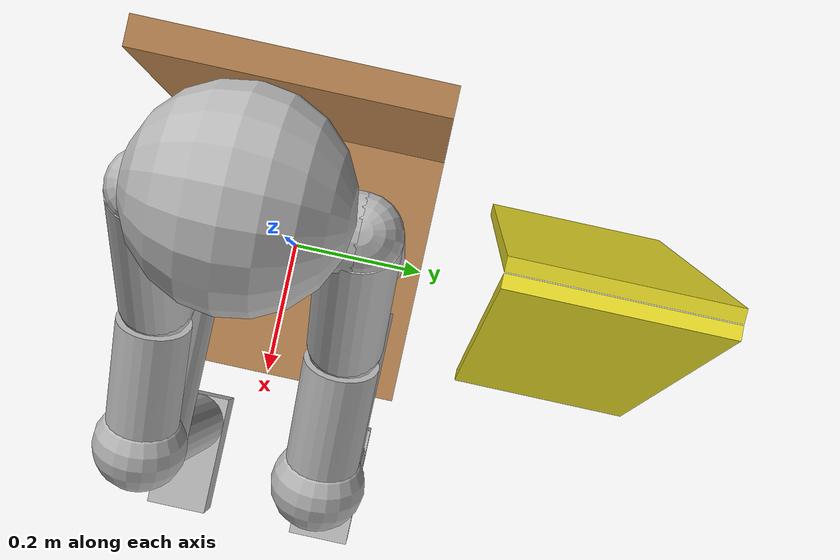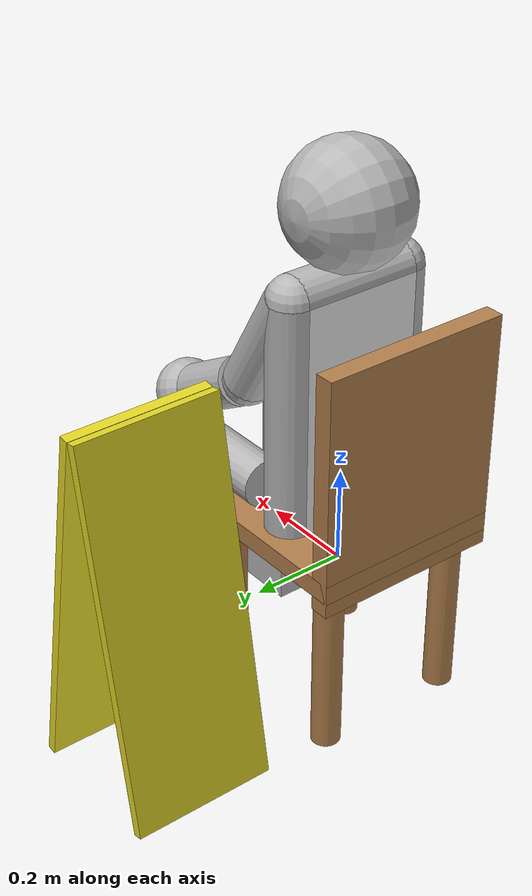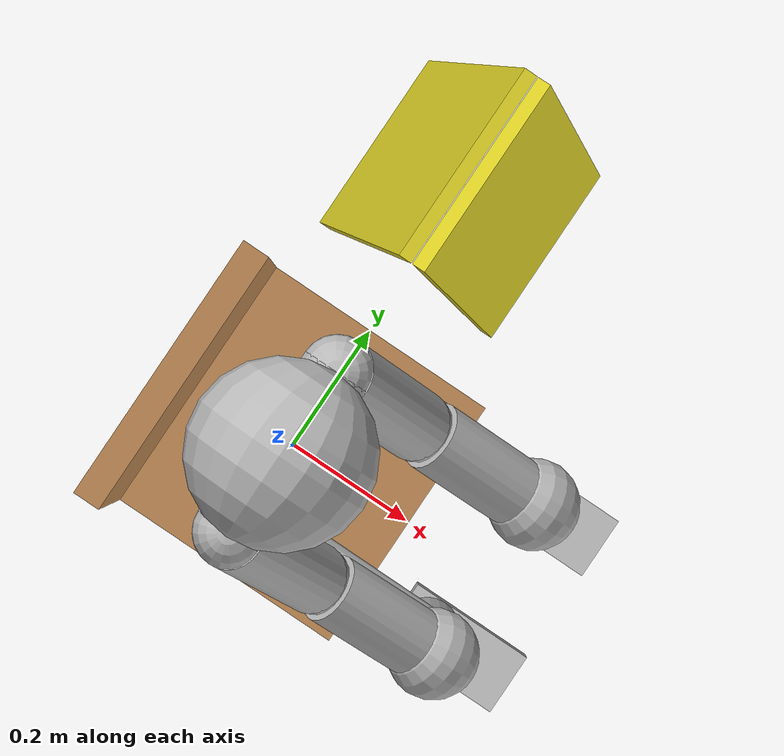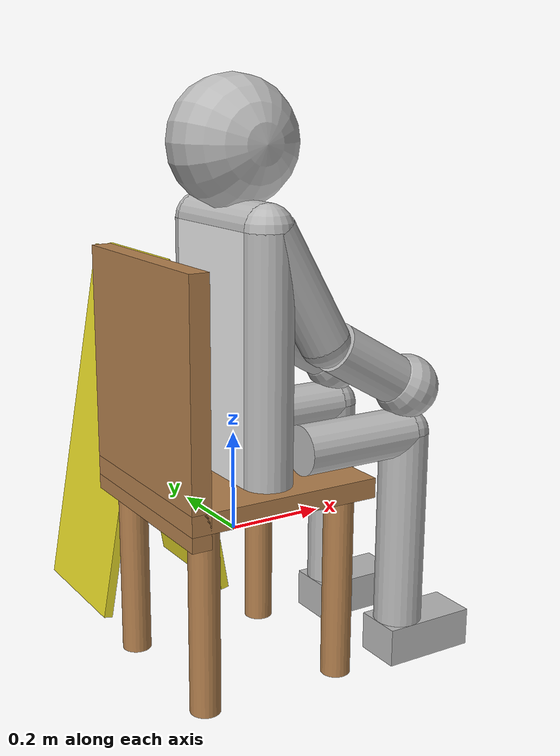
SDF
<sdf version="1.6">
 <model name="steerbot">
  <link name="base_footprint">
   <inertial>
    <pose>0.140125 0.033333 0.282571 0 -0 0</pose>
    <mass>135</mass>
    <inertia>
     <ixx>146.441</ixx>
     <ixy>0.630562</ixy>
     <ixz>3.259</ixz>
     <iyy>146.331</iyy>
     <iyz>0.799072</iyz>
     <izz>141.765</izz>
    </inertia>
   </inertial>
   <visual name="base_footprint_fixed_joint_lump__base_link_visual">
    <pose>0 0 0.11 0 -0 0</pose>
    <geometry><box><size>0.4 0.4 0.04</size></box></geometry>
    <material>
     <script><name>Gazebo/WoodFloor</name><uri>file://media/materials/scripts/gazebo.material</uri></script>
    </material>
   </visual>
   <visual name="base_footprint_fixed_joint_lump__back_link_visual_1">
    <pose>-0.18 0 0.31 3.14159 -1.57079 3.14159</pose>
    <geometry><box><size>0.5 0.4 0.04</size></box></geometry>
    <material>
     <script><name>Gazebo/WoodFloor</name><uri>file://media/materials/scripts/gazebo.material</uri></script>
    </material>
   </visual>
   <visual name="base_footprint_fixed_joint_lump__bodyleft_link_visual_3">
    <pose>0 0.125 0.36 3.14159 -0 3.14159</pose>
    <geometry><cylinder><length>0.5</length><radius>0.05</radius></cylinder></geometry>
   </visual>
   <visual name="base_footprint_fixed_joint_lump__body_link_visual_2">
    <pose>0 0 0.36 3.14159 -1.57079 3.14159</pose>
    <geometry><box><size>0.5 0.25 0.1</size></box></geometry>
    <material>
     <script><name>Gazebo/White</name><uri>file://media/materials/scripts/gazebo.material</uri></script>
    </material>
   </visual>
   <visual name="base_footprint_fixed_joint_lump__legleft1_link_visual_4">
    <pose>0.2 0.125 0.185 3.14159 1.57079 3.14159</pose>
    <geometry><cylinder><length>0.25</length><radius>0.05</radius></cylinder></geometry>
   </visual>
   <visual name="base_footprint_fixed_joint_lump__legleft2_link_visual_5">
    <pose>0.325 0.125 0.185 3.14159 1.57079 3.14159</pose>
    <geometry><sphere><radius>0.05</radius></sphere></geometry>
   </visual>
   <visual name="base_footprint_fixed_joint_lump__legleft3_link_visual_6">
    <pose>0.325 0.125 -0.04 0 -0 0</pose>
    <geometry><cylinder><length>0.45</length><radius>0.05</radius></cylinder></geometry>
   </visual>
   <visual name="base_footprint_fixed_joint_lump__footleft_link_visual_7">
    <pose>0.375 0.125 -0.265 0 -0 0</pose>
    <geometry><box><size>0.2 0.1 0.08</size></box></geometry>
   </visual>
   <visual name="base_footprint_fixed_joint_lump__shoulderleft_link_visual_8">
    <pose>0 0.125 0.61 3.14159 -0 3.14159</pose>
    <geometry><sphere><radius>0.05</radius></sphere></geometry>
   </visual>
   <visual name="base_footprint_fixed_joint_lump__armleft1_link_visual_9">
    <pose>0.065 0.125 0.5 -3.14159 0.523599 -3.14159</pose>
    <geometry><cylinder><length>0.25</length><radius>0.05</radius></cylinder></geometry>
   </visual>
   <visual name="base_footprint_fixed_joint_lump__armleft2_link_visual_10">
    <pose>0.1275 0.125 0.391747 -3.14159 0.523599 -3.14159</pose>
    <geometry><sphere><radius>0.05</radius></sphere></geometry>
   </visual>
   <visual name="base_footprint_fixed_joint_lump__armleft3_link_visual_11">
    <pose>0.238792 0.125 0.328984 -3.14159 1.0472 -3.14159</pose>
    <geometry><cylinder><length>0.2</length><radius>0.05</radius></cylinder></geometry>
   </visual>
   <visual name="base_footprint_fixed_joint_lump__handleft_link_visual_12">
    <pose>0.325394 0.125 0.278984 -3.14159 1.0472 -3.14159</pose>
    <geometry><sphere><radius>0.065</radius></sphere></geometry>
   </visual>
   <visual name="base_footprint_fixed_joint_lump__bodyright_link_visual_13">
    <pose>0 -0.125 0.36 3.14159 -0 3.14159</pose>
    <geometry><cylinder><length>0.5</length><radius>0.05</radius></cylinder></geometry>
   </visual>
   <visual name="base_footprint_fixed_joint_lump__legright1_link_visual_14">
    <pose>0.2 -0.125 0.185 3.14159 1.57079 3.14159</pose>
    <geometry><cylinder><length>0.25</length><radius>0.05</radius></cylinder></geometry>
   </visual>
   <visual name="base_footprint_fixed_joint_lump__legright2_link_visual_15">
    <pose>0.325 -0.125 0.185 3.14159 1.57079 3.14159</pose>
    <geometry><sphere><radius>0.05</radius></sphere></geometry>
   </visual>
   <visual name="base_footprint_fixed_joint_lump__legright3_link_visual_16">
    <pose>0.325 -0.125 -0.04 0 -0 0</pose>
    <geometry><cylinder><length>0.45</length><radius>0.05</radius></cylinder></geometry>
   </visual>
   <visual name="base_footprint_fixed_joint_lump__footright_link_visual_17">
    <pose>0.375 -0.125 -0.265 0 -0 0</pose>
    <geometry><box><size>0.2 0.1 0.08</size></box></geometry>
   </visual>
   <visual name="base_footprint_fixed_joint_lump__shoulderright_link_visual_18">
    <pose>0 -0.125 0.61 3.14159 -0 3.14159</pose>
    <geometry><sphere><radius>0.05</radius></sphere></geometry>
   </visual>
   <visual name="base_footprint_fixed_joint_lump__armright1_link_visual_19">
    <pose>0.065 -0.125 0.5 -3.14159 0.523599 -3.14159</pose>
    <geometry><cylinder><length>0.25</length><radius>0.05</radius></cylinder></geometry>
   </visual>
   <visual name="base_footprint_fixed_joint_lump__armright2_link_visual_20">
    <pose>0.1275 -0.125 0.391747 -3.14159 0.523599 -3.14159</pose>
    <geometry><sphere><radius>0.05</radius></sphere></geometry>
   </visual>
   <visual name="base_footprint_fixed_joint_lump__armright3_link_visual_21">
    <pose>0.238792 -0.125 0.328984 -3.14159 1.0472 -3.14159</pose>
    <geometry><cylinder><length>0.2</length><radius>0.05</radius></cylinder></geometry>
   </visual>
   <visual name="base_footprint_fixed_joint_lump__handright_link_visual_22">
    <pose>0.325394 -0.125 0.278984 -3.14159 1.0472 -3.14159</pose>
    <geometry><sphere><radius>0.065</radius></sphere></geometry>
   </visual>
   <visual name="base_footprint_fixed_joint_lump__chest_link_visual_23">
    <pose>0 0 0.61 3.14159 -1.57079 1.57079</pose>
    <geometry><cylinder><length>0.25</length><radius>0.05</radius></cylinder></geometry>
   </visual>
   <visual name="base_footprint_fixed_joint_lump__head_link_visual_24">
    <pose>0 0 0.76 3.14159 -1.57079 1.57079</pose>
    <geometry><sphere><radius>0.125</radius></sphere></geometry>
   </visual>
   <visual name="base_footprint_fixed_joint_lump__panelback_link_visual_25">
    <pose>-0.08 0.45 0.105 0 -1.39626 0</pose>
    <geometry><box><size>0.8 0.3 0.02</size></box></geometry>
    <material>
     <script><name>Gazebo/Yellow</name><uri>file://media/materials/scripts/gazebo.material</uri></script>
    </material>
   </visual>
   <visual name="base_footprint_fixed_joint_lump__panelfront_link_visual_26">
    <pose>0.08 0.45 0.105 0 1.39626 0</pose>
    <geometry><box><size>0.8 0.3 0.02</size></box></geometry>
    <material>
     <script><name>Gazebo/Yellow</name><uri>file://media/materials/scripts/gazebo.material</uri></script>
    </material>
   </visual>
   <collision name="base_footprint_collision">
    <geometry><sphere><radius>0</radius></sphere></geometry>
    <surface>
     <friction>
      <ode><mu>1</mu><mu2>1</mu2><fdir1>0 0 0</fdir1><slip1>0</slip1><slip2>0</slip2></ode>
      <torsional>
       <coefficient>1</coefficient>
       <patch_radius>0</patch_radius>
       <surface_radius>0</surface_radius>
       <use_patch_radius>1</use_patch_radius>
       <ode><slip>0</slip></ode>
      </torsional>
     </friction>
     <bounce><restitution_coefficient>0</restitution_coefficient><threshold>1e+06</threshold></bounce>
     <contact>
      <collide_without_contact>0</collide_without_contact>
      <collide_without_contact_bitmask>1</collide_without_contact_bitmask>
      <collide_bitmask>1</collide_bitmask>
      <ode>
       <soft_cfm>0</soft_cfm>
       <soft_erp>0.2</soft_erp>
       <kp>1e+13</kp>
       <kd>1</kd>
       <max_vel>0.01</max_vel>
       <min_depth>0</min_depth>
      </ode>
      <bullet>
       <split_impulse>1</split_impulse>
       <split_impulse_penetration_threshold>-0.01</split_impulse_penetration_threshold>
       <soft_cfm>0</soft_cfm>
       <soft_erp>0.2</soft_erp>
       <kp>1e+13</kp>
       <kd>1</kd>
      </bullet>
     </contact>
    </surface>
   </collision>
   <collision name="base_footprint_fixed_joint_lump__base_link_collision_1">
    <pose>0 0 0.11 0 -0 0</pose>
    <geometry><box><size>0.4 0.4 0.04</size></box></geometry>
    <surface>
     <friction>
      <ode><mu>1</mu><mu2>1</mu2><fdir1>0 0 0</fdir1><slip1>0</slip1><slip2>0</slip2></ode>
      <torsional>
       <coefficient>1</coefficient>
       <patch_radius>0</patch_radius>
       <surface_radius>0</surface_radius>
       <use_patch_radius>1</use_patch_radius>
       <ode><slip>0</slip></ode>
      </torsional>
     </friction>
     <bounce><restitution_coefficient>0</restitution_coefficient><threshold>1e+06</threshold></bounce>
     <contact>
      <collide_without_contact>0</collide_without_contact>
      <collide_without_contact_bitmask>1</collide_without_contact_bitmask>
      <collide_bitmask>1</collide_bitmask>
      <ode>
       <soft_cfm>0</soft_cfm>
       <soft_erp>0.2</soft_erp>
       <kp>1e+13</kp>
       <kd>1</kd>
       <max_vel>0.01</max_vel>
       <min_depth>0</min_depth>
      </ode>
      <bullet>
       <split_impulse>1</split_impulse>
       <split_impulse_penetration_threshold>-0.01</split_impulse_penetration_threshold>
       <soft_cfm>0</soft_cfm>
       <soft_erp>0.2</soft_erp>
       <kp>1e+13</kp>
       <kd>1</kd>
      </bullet>
     </contact>
    </surface>
   </collision>
   <collision name="base_footprint_fixed_joint_lump__back_link_collision_2">
    <pose>-0.18 0 0.31 3.14159 -1.57079 3.14159</pose>
    <geometry><box><size>0.4 0.4 0.04</size></box></geometry>
    <surface>
     <friction>
      <ode><mu>1</mu><mu2>1</mu2><fdir1>0 0 0</fdir1><slip1>0</slip1><slip2>0</slip2></ode>
      <torsional>
       <coefficient>1</coefficient>
       <patch_radius>0</patch_radius>
       <surface_radius>0</surface_radius>
       <use_patch_radius>1</use_patch_radius>
       <ode><slip>0</slip></ode>
      </torsional>
     </friction>
     <bounce><restitution_coefficient>0</restitution_coefficient><threshold>1e+06</threshold></bounce>
     <contact>
      <collide_without_contact>0</collide_without_contact>
      <collide_without_contact_bitmask>1</collide_without_contact_bitmask>
      <collide_bitmask>1</collide_bitmask>
      <ode>
       <soft_cfm>0</soft_cfm>
       <soft_erp>0.2</soft_erp>
       <kp>1e+13</kp>
       <kd>1</kd>
       <max_vel>0.01</max_vel>
       <min_depth>0</min_depth>
      </ode>
      <bullet>
       <split_impulse>1</split_impulse>
       <split_impulse_penetration_threshold>-0.01</split_impulse_penetration_threshold>
       <soft_cfm>0</soft_cfm>
       <soft_erp>0.2</soft_erp>
       <kp>1e+13</kp>
       <kd>1</kd>
      </bullet>
     </contact>
    </surface>
   </collision>
   <collision name="base_footprint_fixed_joint_lump__body_link_collision_3">
    <pose>0 0 0.36 3.14159 -1.57079 3.14159</pose>
    <geometry><box><size>0.5 0.25 0.1</size></box></geometry>
    <surface>
     <friction>
      <ode><mu>1</mu><mu2>1</mu2><fdir1>0 0 0</fdir1><slip1>0</slip1><slip2>0</slip2></ode>
      <torsional>
       <coefficient>1</coefficient>
       <patch_radius>0</patch_radius>
       <surface_radius>0</surface_radius>
       <use_patch_radius>1</use_patch_radius>
       <ode><slip>0</slip></ode>
      </torsional>
     </friction>
     <bounce><restitution_coefficient>0</restitution_coefficient><threshold>1e+06</threshold></bounce>
     <contact>
      <collide_without_contact>0</collide_without_contact>
      <collide_without_contact_bitmask>1</collide_without_contact_bitmask>
      <collide_bitmask>1</collide_bitmask>
      <ode>
       <soft_cfm>0</soft_cfm>
       <soft_erp>0.2</soft_erp>
       <kp>1e+13</kp>
       <kd>1</kd>
       <max_vel>0.01</max_vel>
       <min_depth>0</min_depth>
      </ode>
      <bullet>
       <split_impulse>1</split_impulse>
       <split_impulse_penetration_threshold>-0.01</split_impulse_penetration_threshold>
       <soft_cfm>0</soft_cfm>
       <soft_erp>0.2</soft_erp>
       <kp>1e+13</kp>
       <kd>1</kd>
      </bullet>
     </contact>
    </surface>
   </collision>
   <collision name="base_footprint_fixed_joint_lump__bodyleft_link_collision_4">
    <pose>0 0.125 0.36 3.14159 -0 3.14159</pose>
    <geometry><cylinder><radius>0.05</radius><length>0.5</length></cylinder></geometry>
    <surface>
     <friction>
      <ode><mu>1</mu><mu2>1</mu2><fdir1>0 0 0</fdir1><slip1>0</slip1><slip2>0</slip2></ode>
      <torsional>
       <coefficient>1</coefficient>
       <patch_radius>0</patch_radius>
       <surface_radius>0</surface_radius>
       <use_patch_radius>1</use_patch_radius>
       <ode><slip>0</slip></ode>
      </torsional>
     </friction>
     <bounce><restitution_coefficient>0</restitution_coefficient><threshold>1e+06</threshold></bounce>
     <contact>
      <collide_without_contact>0</collide_without_contact>
      <collide_without_contact_bitmask>1</collide_without_contact_bitmask>
      <collide_bitmask>1</collide_bitmask>
      <ode>
       <soft_cfm>0</soft_cfm>
       <soft_erp>0.2</soft_erp>
       <kp>1e+13</kp>
       <kd>1</kd>
       <max_vel>0.01</max_vel>
       <min_depth>0</min_depth>
      </ode>
      <bullet>
       <split_impulse>1</split_impulse>
       <split_impulse_penetration_threshold>-0.01</split_impulse_penetration_threshold>
       <soft_cfm>0</soft_cfm>
       <soft_erp>0.2</soft_erp>
       <kp>1e+13</kp>
       <kd>1</kd>
      </bullet>
     </contact>
    </surface>
   </collision>
   <collision name="base_footprint_fixed_joint_lump__legleft1_link_collision_5">
    <pose>0.2 0.125 0.185 3.14159 1.57079 3.14159</pose>
    <geometry><cylinder><radius>0.05</radius><length>0.25</length></cylinder></geometry>
    <surface>
     <friction>
      <ode><mu>1</mu><mu2>1</mu2><fdir1>0 0 0</fdir1><slip1>0</slip1><slip2>0</slip2></ode>
      <torsional>
       <coefficient>1</coefficient>
       <patch_radius>0</patch_radius>
       <surface_radius>0</surface_radius>
       <use_patch_radius>1</use_patch_radius>
       <ode><slip>0</slip></ode>
      </torsional>
     </friction>
     <bounce><restitution_coefficient>0</restitution_coefficient><threshold>1e+06</threshold></bounce>
     <contact>
      <collide_without_contact>0</collide_without_contact>
      <collide_without_contact_bitmask>1</collide_without_contact_bitmask>
      <collide_bitmask>1</collide_bitmask>
      <ode>
       <soft_cfm>0</soft_cfm>
       <soft_erp>0.2</soft_erp>
       <kp>1e+13</kp>
       <kd>1</kd>
       <max_vel>0.01</max_vel>
       <min_depth>0</min_depth>
      </ode>
      <bullet>
       <split_impulse>1</split_impulse>
       <split_impulse_penetration_threshold>-0.01</split_impulse_penetration_threshold>
       <soft_cfm>0</soft_cfm>
       <soft_erp>0.2</soft_erp>
       <kp>1e+13</kp>
       <kd>1</kd>
      </bullet>
     </contact>
    </surface>
   </collision>
   <collision name="base_footprint_fixed_joint_lump__legleft2_link_collision_6">
    <pose>0.325 0.125 0.185 3.14159 1.57079 3.14159</pose>
    <geometry><sphere><radius>0.05</radius></sphere></geometry>
    <surface>
     <friction>
      <ode><mu>1</mu><mu2>1</mu2><fdir1>0 0 0</fdir1><slip1>0</slip1><slip2>0</slip2></ode>
      <torsional>
       <coefficient>1</coefficient>
       <patch_radius>0</patch_radius>
       <surface_radius>0</surface_radius>
       <use_patch_radius>1</use_patch_radius>
       <ode><slip>0</slip></ode>
      </torsional>
     </friction>
     <bounce><restitution_coefficient>0</restitution_coefficient><threshold>1e+06</threshold></bounce>
     <contact>
      <collide_without_contact>0</collide_without_contact>
      <collide_without_contact_bitmask>1</collide_without_contact_bitmask>
      <collide_bitmask>1</collide_bitmask>
      <ode>
       <soft_cfm>0</soft_cfm>
       <soft_erp>0.2</soft_erp>
       <kp>1e+13</kp>
       <kd>1</kd>
       <max_vel>0.01</max_vel>
       <min_depth>0</min_depth>
      </ode>
      <bullet>
       <split_impulse>1</split_impulse>
       <split_impulse_penetration_threshold>-0.01</split_impulse_penetration_threshold>
       <soft_cfm>0</soft_cfm>
       <soft_erp>0.2</soft_erp>
       <kp>1e+13</kp>
       <kd>1</kd>
      </bullet>
     </contact>
    </surface>
   </collision>
   <collision name="base_footprint_fixed_joint_lump__legleft3_link_collision_7">
    <pose>0.325 0.125 -0.04 0 -0 0</pose>
    <geometry><cylinder><radius>0.05</radius><length>0.45</length></cylinder></geometry>
    <surface>
     <friction>
      <ode><mu>1</mu><mu2>1</mu2><fdir1>0 0 0</fdir1><slip1>0</slip1><slip2>0</slip2></ode>
      <torsional>
       <coefficient>1</coefficient>
       <patch_radius>0</patch_radius>
       <surface_radius>0</surface_radius>
       <use_patch_radius>1</use_patch_radius>
       <ode><slip>0</slip></ode>
      </torsional>
     </friction>
     <bounce><restitution_coefficient>0</restitution_coefficient><threshold>1e+06</threshold></bounce>
     <contact>
      <collide_without_contact>0</collide_without_contact>
      <collide_without_contact_bitmask>1</collide_without_contact_bitmask>
      <collide_bitmask>1</collide_bitmask>
      <ode>
       <soft_cfm>0</soft_cfm>
       <soft_erp>0.2</soft_erp>
       <kp>1e+13</kp>
       <kd>1</kd>
       <max_vel>0.01</max_vel>
       <min_depth>0</min_depth>
      </ode>
      <bullet>
       <split_impulse>1</split_impulse>
       <split_impulse_penetration_threshold>-0.01</split_impulse_penetration_threshold>
       <soft_cfm>0</soft_cfm>
       <soft_erp>0.2</soft_erp>
       <kp>1e+13</kp>
       <kd>1</kd>
      </bullet>
     </contact>
    </surface>
   </collision>
   <collision name="base_footprint_fixed_joint_lump__footleft_link_collision_8">
    <pose>0.375 0.125 -0.265 0 -0 0</pose>
    <geometry><box><size>0.2 0.1 0.05</size></box></geometry>
    <surface>
     <friction>
      <ode><mu>1</mu><mu2>1</mu2><fdir1>0 0 0</fdir1><slip1>0</slip1><slip2>0</slip2></ode>
      <torsional>
       <coefficient>1</coefficient>
       <patch_radius>0</patch_radius>
       <surface_radius>0</surface_radius>
       <use_patch_radius>1</use_patch_radius>
       <ode><slip>0</slip></ode>
      </torsional>
     </friction>
     <bounce><restitution_coefficient>0</restitution_coefficient><threshold>1e+06</threshold></bounce>
     <contact>
      <collide_without_contact>0</collide_without_contact>
      <collide_without_contact_bitmask>1</collide_without_contact_bitmask>
      <collide_bitmask>1</collide_bitmask>
      <ode>
       <soft_cfm>0</soft_cfm>
       <soft_erp>0.2</soft_erp>
       <kp>1e+13</kp>
       <kd>1</kd>
       <max_vel>0.01</max_vel>
       <min_depth>0</min_depth>
      </ode>
      <bullet>
       <split_impulse>1</split_impulse>
       <split_impulse_penetration_threshold>-0.01</split_impulse_penetration_threshold>
       <soft_cfm>0</soft_cfm>
       <soft_erp>0.2</soft_erp>
       <kp>1e+13</kp>
       <kd>1</kd>
      </bullet>
     </contact>
    </surface>
   </collision>
   <collision name="base_footprint_fixed_joint_lump__shoulderleft_link_collision_9">
    <pose>0 0.125 0.61 3.14159 -0 3.14159</pose>
    <geometry><sphere><radius>0.05</radius></sphere></geometry>
    <surface>
     <friction>
      <ode><mu>1</mu><mu2>1</mu2><fdir1>0 0 0</fdir1><slip1>0</slip1><slip2>0</slip2></ode>
      <torsional>
       <coefficient>1</coefficient>
       <patch_radius>0</patch_radius>
       <surface_radius>0</surface_radius>
       <use_patch_radius>1</use_patch_radius>
       <ode><slip>0</slip></ode>
      </torsional>
     </friction>
     <bounce><restitution_coefficient>0</restitution_coefficient><threshold>1e+06</threshold></bounce>
     <contact>
      <collide_without_contact>0</collide_without_contact>
      <collide_without_contact_bitmask>1</collide_without_contact_bitmask>
      <collide_bitmask>1</collide_bitmask>
      <ode>
       <soft_cfm>0</soft_cfm>
       <soft_erp>0.2</soft_erp>
       <kp>1e+13</kp>
       <kd>1</kd>
       <max_vel>0.01</max_vel>
       <min_depth>0</min_depth>
      </ode>
      <bullet>
       <split_impulse>1</split_impulse>
       <split_impulse_penetration_threshold>-0.01</split_impulse_penetration_threshold>
       <soft_cfm>0</soft_cfm>
       <soft_erp>0.2</soft_erp>
       <kp>1e+13</kp>
       <kd>1</kd>
      </bullet>
     </contact>
    </surface>
   </collision>
   <collision name="base_footprint_fixed_joint_lump__armleft1_link_collision_10">
    <pose>0.065 0.125 0.5 -3.14159 0.523599 -3.14159</pose>
    <geometry><cylinder><radius>0.05</radius><length>0.25</length></cylinder></geometry>
    <surface>
     <friction>
      <ode><mu>1</mu><mu2>1</mu2><fdir1>0 0 0</fdir1><slip1>0</slip1><slip2>0</slip2></ode>
      <torsional>
       <coefficient>1</coefficient>
       <patch_radius>0</patch_radius>
       <surface_radius>0</surface_radius>
       <use_patch_radius>1</use_patch_radius>
       <ode><slip>0</slip></ode>
      </torsional>
     </friction>
     <bounce><restitution_coefficient>0</restitution_coefficient><threshold>1e+06</threshold></bounce>
     <contact>
      <collide_without_contact>0</collide_without_contact>
      <collide_without_contact_bitmask>1</collide_without_contact_bitmask>
      <collide_bitmask>1</collide_bitmask>
      <ode>
       <soft_cfm>0</soft_cfm>
       <soft_erp>0.2</soft_erp>
       <kp>1e+13</kp>
       <kd>1</kd>
       <max_vel>0.01</max_vel>
       <min_depth>0</min_depth>
      </ode>
      <bullet>
       <split_impulse>1</split_impulse>
       <split_impulse_penetration_threshold>-0.01</split_impulse_penetration_threshold>
       <soft_cfm>0</soft_cfm>
       <soft_erp>0.2</soft_erp>
       <kp>1e+13</kp>
       <kd>1</kd>
      </bullet>
     </contact>
    </surface>
   </collision>
   <collision name="base_footprint_fixed_joint_lump__armleft2_link_collision_11">
    <pose>0.1275 0.125 0.391747 -3.14159 0.523599 -3.14159</pose>
    <geometry><sphere><radius>0.05</radius></sphere></geometry>
    <surface>
     <friction>
      <ode><mu>1</mu><mu2>1</mu2><fdir1>0 0 0</fdir1><slip1>0</slip1><slip2>0</slip2></ode>
      <torsional>
       <coefficient>1</coefficient>
       <patch_radius>0</patch_radius>
       <surface_radius>0</surface_radius>
       <use_patch_radius>1</use_patch_radius>
       <ode><slip>0</slip></ode>
      </torsional>
     </friction>
     <bounce><restitution_coefficient>0</restitution_coefficient><threshold>1e+06</threshold></bounce>
     <contact>
      <collide_without_contact>0</collide_without_contact>
      <collide_without_contact_bitmask>1</collide_without_contact_bitmask>
      <collide_bitmask>1</collide_bitmask>
      <ode>
       <soft_cfm>0</soft_cfm>
       <soft_erp>0.2</soft_erp>
       <kp>1e+13</kp>
       <kd>1</kd>
       <max_vel>0.01</max_vel>
       <min_depth>0</min_depth>
      </ode>
      <bullet>
       <split_impulse>1</split_impulse>
       <split_impulse_penetration_threshold>-0.01</split_impulse_penetration_threshold>
       <soft_cfm>0</soft_cfm>
       <soft_erp>0.2</soft_erp>
       <kp>1e+13</kp>
       <kd>1</kd>
      </bullet>
     </contact>
    </surface>
   </collision>
   <collision name="base_footprint_fixed_joint_lump__armleft3_link_collision_12">
    <pose>0.238792 0.125 0.328984 -3.14159 1.0472 -3.14159</pose>
    <geometry><cylinder><radius>0.05</radius><length>0.2</length></cylinder></geometry>
    <surface>
     <friction>
      <ode><mu>1</mu><mu2>1</mu2><fdir1>0 0 0</fdir1><slip1>0</slip1><slip2>0</slip2></ode>
      <torsional>
       <coefficient>1</coefficient>
       <patch_radius>0</patch_radius>
       <surface_radius>0</surface_radius>
       <use_patch_radius>1</use_patch_radius>
       <ode><slip>0</slip></ode>
      </torsional>
     </friction>
     <bounce><restitution_coefficient>0</restitution_coefficient><threshold>1e+06</threshold></bounce>
     <contact>
      <collide_without_contact>0</collide_without_contact>
      <collide_without_contact_bitmask>1</collide_without_contact_bitmask>
      <collide_bitmask>1</collide_bitmask>
      <ode>
       <soft_cfm>0</soft_cfm>
       <soft_erp>0.2</soft_erp>
       <kp>1e+13</kp>
       <kd>1</kd>
       <max_vel>0.01</max_vel>
       <min_depth>0</min_depth>
      </ode>
      <bullet>
       <split_impulse>1</split_impulse>
       <split_impulse_penetration_threshold>-0.01</split_impulse_penetration_threshold>
       <soft_cfm>0</soft_cfm>
       <soft_erp>0.2</soft_erp>
       <kp>1e+13</kp>
       <kd>1</kd>
      </bullet>
     </contact>
    </surface>
   </collision>
   <collision name="base_footprint_fixed_joint_lump__handleft_link_collision_13">
    <pose>0.325394 0.125 0.278984 -3.14159 1.0472 -3.14159</pose>
    <geometry><sphere><radius>0.065</radius></sphere></geometry>
    <surface>
     <friction>
      <ode><mu>1</mu><mu2>1</mu2><fdir1>0 0 0</fdir1><slip1>0</slip1><slip2>0</slip2></ode>
      <torsional>
       <coefficient>1</coefficient>
       <patch_radius>0</patch_radius>
       <surface_radius>0</surface_radius>
       <use_patch_radius>1</use_patch_radius>
       <ode><slip>0</slip></ode>
      </torsional>
     </friction>
     <bounce><restitution_coefficient>0</restitution_coefficient><threshold>1e+06</threshold></bounce>
     <contact>
      <collide_without_contact>0</collide_without_contact>
      <collide_without_contact_bitmask>1</collide_without_contact_bitmask>
      <collide_bitmask>1</collide_bitmask>
      <ode>
       <soft_cfm>0</soft_cfm>
       <soft_erp>0.2</soft_erp>
       <kp>1e+13</kp>
       <kd>1</kd>
       <max_vel>0.01</max_vel>
       <min_depth>0</min_depth>
      </ode>
      <bullet>
       <split_impulse>1</split_impulse>
       <split_impulse_penetration_threshold>-0.01</split_impulse_penetration_threshold>
       <soft_cfm>0</soft_cfm>
       <soft_erp>0.2</soft_erp>
       <kp>1e+13</kp>
       <kd>1</kd>
      </bullet>
     </contact>
    </surface>
   </collision>
   <collision name="base_footprint_fixed_joint_lump__bodyright_link_collision_14">
    <pose>0 -0.125 0.36 3.14159 -0 3.14159</pose>
    <geometry><cylinder><radius>0.05</radius><length>0.5</length></cylinder></geometry>
    <surface>
     <friction>
      <ode><mu>1</mu><mu2>1</mu2><fdir1>0 0 0</fdir1><slip1>0</slip1><slip2>0</slip2></ode>
      <torsional>
       <coefficient>1</coefficient>
       <patch_radius>0</patch_radius>
       <surface_radius>0</surface_radius>
       <use_patch_radius>1</use_patch_radius>
       <ode><slip>0</slip></ode>
      </torsional>
     </friction>
     <bounce><restitution_coefficient>0</restitution_coefficient><threshold>1e+06</threshold></bounce>
     <contact>
      <collide_without_contact>0</collide_without_contact>
      <collide_without_contact_bitmask>1</collide_without_contact_bitmask>
      <collide_bitmask>1</collide_bitmask>
      <ode>
       <soft_cfm>0</soft_cfm>
       <soft_erp>0.2</soft_erp>
       <kp>1e+13</kp>
       <kd>1</kd>
       <max_vel>0.01</max_vel>
       <min_depth>0</min_depth>
      </ode>
      <bullet>
       <split_impulse>1</split_impulse>
       <split_impulse_penetration_threshold>-0.01</split_impulse_penetration_threshold>
       <soft_cfm>0</soft_cfm>
       <soft_erp>0.2</soft_erp>
       <kp>1e+13</kp>
       <kd>1</kd>
      </bullet>
     </contact>
    </surface>
   </collision>
   <collision name="base_footprint_fixed_joint_lump__legright1_link_collision_15">
    <pose>0.2 -0.125 0.185 3.14159 1.57079 3.14159</pose>
    <geometry><cylinder><radius>0.05</radius><length>0.25</length></cylinder></geometry>
    <surface>
     <friction>
      <ode><mu>1</mu><mu2>1</mu2><fdir1>0 0 0</fdir1><slip1>0</slip1><slip2>0</slip2></ode>
      <torsional>
       <coefficient>1</coefficient>
       <patch_radius>0</patch_radius>
       <surface_radius>0</surface_radius>
       <use_patch_radius>1</use_patch_radius>
       <ode><slip>0</slip></ode>
      </torsional>
     </friction>
     <bounce><restitution_coefficient>0</restitution_coefficient><threshold>1e+06</threshold></bounce>
     <contact>
      <collide_without_contact>0</collide_without_contact>
      <collide_without_contact_bitmask>1</collide_without_contact_bitmask>
      <collide_bitmask>1</collide_bitmask>
      <ode>
       <soft_cfm>0</soft_cfm>
       <soft_erp>0.2</soft_erp>
       <kp>1e+13</kp>
       <kd>1</kd>
       <max_vel>0.01</max_vel>
       <min_depth>0</min_depth>
      </ode>
      <bullet>
       <split_impulse>1</split_impulse>
       <split_impulse_penetration_threshold>-0.01</split_impulse_penetration_threshold>
       <soft_cfm>0</soft_cfm>
       <soft_erp>0.2</soft_erp>
       <kp>1e+13</kp>
       <kd>1</kd>
      </bullet>
     </contact>
    </surface>
   </collision>
   <collision name="base_footprint_fixed_joint_lump__legright2_link_collision_16">
    <pose>0.325 -0.125 0.185 3.14159 1.57079 3.14159</pose>
    <geometry><sphere><radius>0.05</radius></sphere></geometry>
    <surface>
     <friction>
      <ode><mu>1</mu><mu2>1</mu2><fdir1>0 0 0</fdir1><slip1>0</slip1><slip2>0</slip2></ode>
      <torsional>
       <coefficient>1</coefficient>
       <patch_radius>0</patch_radius>
       <surface_radius>0</surface_radius>
       <use_patch_radius>1</use_patch_radius>
       <ode><slip>0</slip></ode>
      </torsional>
     </friction>
     <bounce><restitution_coefficient>0</restitution_coefficient><threshold>1e+06</threshold></bounce>
     <contact>
      <collide_without_contact>0</collide_without_contact>
      <collide_without_contact_bitmask>1</collide_without_contact_bitmask>
      <collide_bitmask>1</collide_bitmask>
      <ode>
       <soft_cfm>0</soft_cfm>
       <soft_erp>0.2</soft_erp>
       <kp>1e+13</kp>
       <kd>1</kd>
       <max_vel>0.01</max_vel>
       <min_depth>0</min_depth>
      </ode>
      <bullet>
       <split_impulse>1</split_impulse>
       <split_impulse_penetration_threshold>-0.01</split_impulse_penetration_threshold>
       <soft_cfm>0</soft_cfm>
       <soft_erp>0.2</soft_erp>
       <kp>1e+13</kp>
       <kd>1</kd>
      </bullet>
     </contact>
    </surface>
   </collision>
   <collision name="base_footprint_fixed_joint_lump__legright3_link_collision_17">
    <pose>0.325 -0.125 -0.04 0 -0 0</pose>
    <geometry><cylinder><radius>0.05</radius><length>0.45</length></cylinder></geometry>
    <surface>
     <friction>
      <ode><mu>1</mu><mu2>1</mu2><fdir1>0 0 0</fdir1><slip1>0</slip1><slip2>0</slip2></ode>
      <torsional>
       <coefficient>1</coefficient>
       <patch_radius>0</patch_radius>
       <surface_radius>0</surface_radius>
       <use_patch_radius>1</use_patch_radius>
       <ode><slip>0</slip></ode>
      </torsional>
     </friction>
     <bounce><restitution_coefficient>0</restitution_coefficient><threshold>1e+06</threshold></bounce>
     <contact>
      <collide_without_contact>0</collide_without_contact>
      <collide_without_contact_bitmask>1</collide_without_contact_bitmask>
      <collide_bitmask>1</collide_bitmask>
      <ode>
       <soft_cfm>0</soft_cfm>
       <soft_erp>0.2</soft_erp>
       <kp>1e+13</kp>
       <kd>1</kd>
       <max_vel>0.01</max_vel>
       <min_depth>0</min_depth>
      </ode>
      <bullet>
       <split_impulse>1</split_impulse>
       <split_impulse_penetration_threshold>-0.01</split_impulse_penetration_threshold>
       <soft_cfm>0</soft_cfm>
       <soft_erp>0.2</soft_erp>
       <kp>1e+13</kp>
       <kd>1</kd>
      </bullet>
     </contact>
    </surface>
   </collision>
   <collision name="base_footprint_fixed_joint_lump__footright_link_collision_18">
    <pose>0.375 -0.125 -0.265 0 -0 0</pose>
    <geometry><box><size>0.2 0.1 0.05</size></box></geometry>
    <surface>
     <friction>
      <ode><mu>1</mu><mu2>1</mu2><fdir1>0 0 0</fdir1><slip1>0</slip1><slip2>0</slip2></ode>
      <torsional>
       <coefficient>1</coefficient>
       <patch_radius>0</patch_radius>
       <surface_radius>0</surface_radius>
       <use_patch_radius>1</use_patch_radius>
       <ode><slip>0</slip></ode>
      </torsional>
     </friction>
     <bounce><restitution_coefficient>0</restitution_coefficient><threshold>1e+06</threshold></bounce>
     <contact>
      <collide_without_contact>0</collide_without_contact>
      <collide_without_contact_bitmask>1</collide_without_contact_bitmask>
      <collide_bitmask>1</collide_bitmask>
      <ode>
       <soft_cfm>0</soft_cfm>
       <soft_erp>0.2</soft_erp>
       <kp>1e+13</kp>
       <kd>1</kd>
       <max_vel>0.01</max_vel>
       <min_depth>0</min_depth>
      </ode>
      <bullet>
       <split_impulse>1</split_impulse>
       <split_impulse_penetration_threshold>-0.01</split_impulse_penetration_threshold>
       <soft_cfm>0</soft_cfm>
       <soft_erp>0.2</soft_erp>
       <kp>1e+13</kp>
       <kd>1</kd>
      </bullet>
     </contact>
    </surface>
   </collision>
   <collision name="base_footprint_fixed_joint_lump__shoulderright_link_collision_19">
    <pose>0 -0.125 0.61 3.14159 -0 3.14159</pose>
    <geometry><sphere><radius>0.05</radius></sphere></geometry>
    <surface>
     <friction>
      <ode><mu>1</mu><mu2>1</mu2><fdir1>0 0 0</fdir1><slip1>0</slip1><slip2>0</slip2></ode>
      <torsional>
       <coefficient>1</coefficient>
       <patch_radius>0</patch_radius>
       <surface_radius>0</surface_radius>
       <use_patch_radius>1</use_patch_radius>
       <ode><slip>0</slip></ode>
      </torsional>
     </friction>
     <bounce><restitution_coefficient>0</restitution_coefficient><threshold>1e+06</threshold></bounce>
     <contact>
      <collide_without_contact>0</collide_without_contact>
      <collide_without_contact_bitmask>1</collide_without_contact_bitmask>
      <collide_bitmask>1</collide_bitmask>
      <ode>
       <soft_cfm>0</soft_cfm>
       <soft_erp>0.2</soft_erp>
       <kp>1e+13</kp>
       <kd>1</kd>
       <max_vel>0.01</max_vel>
       <min_depth>0</min_depth>
      </ode>
      <bullet>
       <split_impulse>1</split_impulse>
       <split_impulse_penetration_threshold>-0.01</split_impulse_penetration_threshold>
       <soft_cfm>0</soft_cfm>
       <soft_erp>0.2</soft_erp>
       <kp>1e+13</kp>
       <kd>1</kd>
      </bullet>
     </contact>
    </surface>
   </collision>
   <collision name="base_footprint_fixed_joint_lump__armright1_link_collision_20">
    <pose>0.065 -0.125 0.5 -3.14159 0.523599 -3.14159</pose>
    <geometry><cylinder><radius>0.05</radius><length>0.25</length></cylinder></geometry>
    <surface>
     <friction>
      <ode><mu>1</mu><mu2>1</mu2><fdir1>0 0 0</fdir1><slip1>0</slip1><slip2>0</slip2></ode>
      <torsional>
       <coefficient>1</coefficient>
       <patch_radius>0</patch_radius>
       <surface_radius>0</surface_radius>
       <use_patch_radius>1</use_patch_radius>
       <ode><slip>0</slip></ode>
      </torsional>
     </friction>
     <bounce><restitution_coefficient>0</restitution_coefficient><threshold>1e+06</threshold></bounce>
     <contact>
      <collide_without_contact>0</collide_without_contact>
      <collide_without_contact_bitmask>1</collide_without_contact_bitmask>
      <collide_bitmask>1</collide_bitmask>
      <ode>
       <soft_cfm>0</soft_cfm>
       <soft_erp>0.2</soft_erp>
       <kp>1e+13</kp>
       <kd>1</kd>
       <max_vel>0.01</max_vel>
       <min_depth>0</min_depth>
      </ode>
      <bullet>
       <split_impulse>1</split_impulse>
       <split_impulse_penetration_threshold>-0.01</split_impulse_penetration_threshold>
       <soft_cfm>0</soft_cfm>
       <soft_erp>0.2</soft_erp>
       <kp>1e+13</kp>
       <kd>1</kd>
      </bullet>
     </contact>
    </surface>
   </collision>
   <collision name="base_footprint_fixed_joint_lump__armright2_link_collision_21">
    <pose>0.1275 -0.125 0.391747 -3.14159 0.523599 -3.14159</pose>
    <geometry><sphere><radius>0.05</radius></sphere></geometry>
    <surface>
     <friction>
      <ode><mu>1</mu><mu2>1</mu2><fdir1>0 0 0</fdir1><slip1>0</slip1><slip2>0</slip2></ode>
      <torsional>
       <coefficient>1</coefficient>
       <patch_radius>0</patch_radius>
       <surface_radius>0</surface_radius>
       <use_patch_radius>1</use_patch_radius>
       <ode><slip>0</slip></ode>
      </torsional>
     </friction>
     <bounce><restitution_coefficient>0</restitution_coefficient><threshold>1e+06</threshold></bounce>
     <contact>
      <collide_without_contact>0</collide_without_contact>
      <collide_without_contact_bitmask>1</collide_without_contact_bitmask>
      <collide_bitmask>1</collide_bitmask>
      <ode>
       <soft_cfm>0</soft_cfm>
       <soft_erp>0.2</soft_erp>
       <kp>1e+13</kp>
       <kd>1</kd>
       <max_vel>0.01</max_vel>
       <min_depth>0</min_depth>
      </ode>
      <bullet>
       <split_impulse>1</split_impulse>
       <split_impulse_penetration_threshold>-0.01</split_impulse_penetration_threshold>
       <soft_cfm>0</soft_cfm>
       <soft_erp>0.2</soft_erp>
       <kp>1e+13</kp>
       <kd>1</kd>
      </bullet>
     </contact>
    </surface>
   </collision>
   <collision name="base_footprint_fixed_joint_lump__armright3_link_collision_22">
    <pose>0.238792 -0.125 0.328984 -3.14159 1.0472 -3.14159</pose>
    <geometry><cylinder><radius>0.05</radius><length>0.2</length></cylinder></geometry>
    <surface>
     <friction>
      <ode><mu>1</mu><mu2>1</mu2><fdir1>0 0 0</fdir1><slip1>0</slip1><slip2>0</slip2></ode>
      <torsional>
       <coefficient>1</coefficient>
       <patch_radius>0</patch_radius>
       <surface_radius>0</surface_radius>
       <use_patch_radius>1</use_patch_radius>
       <ode><slip>0</slip></ode>
      </torsional>
     </friction>
     <bounce><restitution_coefficient>0</restitution_coefficient><threshold>1e+06</threshold></bounce>
     <contact>
      <collide_without_contact>0</collide_without_contact>
      <collide_without_contact_bitmask>1</collide_without_contact_bitmask>
      <collide_bitmask>1</collide_bitmask>
      <ode>
       <soft_cfm>0</soft_cfm>
       <soft_erp>0.2</soft_erp>
       <kp>1e+13</kp>
       <kd>1</kd>
       <max_vel>0.01</max_vel>
       <min_depth>0</min_depth>
      </ode>
      <bullet>
       <split_impulse>1</split_impulse>
       <split_impulse_penetration_threshold>-0.01</split_impulse_penetration_threshold>
       <soft_cfm>0</soft_cfm>
       <soft_erp>0.2</soft_erp>
       <kp>1e+13</kp>
       <kd>1</kd>
      </bullet>
     </contact>
    </surface>
   </collision>
   <collision name="base_footprint_fixed_joint_lump__handright_link_collision_23">
    <pose>0.325394 -0.125 0.278984 -3.14159 1.0472 -3.14159</pose>
    <geometry><sphere><radius>0.065</radius></sphere></geometry>
    <surface>
     <friction>
      <ode><mu>1</mu><mu2>1</mu2><fdir1>0 0 0</fdir1><slip1>0</slip1><slip2>0</slip2></ode>
      <torsional>
       <coefficient>1</coefficient>
       <patch_radius>0</patch_radius>
       <surface_radius>0</surface_radius>
       <use_patch_radius>1</use_patch_radius>
       <ode><slip>0</slip></ode>
      </torsional>
     </friction>
     <bounce><restitution_coefficient>0</restitution_coefficient><threshold>1e+06</threshold></bounce>
     <contact>
      <collide_without_contact>0</collide_without_contact>
      <collide_without_contact_bitmask>1</collide_without_contact_bitmask>
      <collide_bitmask>1</collide_bitmask>
      <ode>
       <soft_cfm>0</soft_cfm>
       <soft_erp>0.2</soft_erp>
       <kp>1e+13</kp>
       <kd>1</kd>
       <max_vel>0.01</max_vel>
       <min_depth>0</min_depth>
      </ode>
      <bullet>
       <split_impulse>1</split_impulse>
       <split_impulse_penetration_threshold>-0.01</split_impulse_penetration_threshold>
       <soft_cfm>0</soft_cfm>
       <soft_erp>0.2</soft_erp>
       <kp>1e+13</kp>
       <kd>1</kd>
      </bullet>
     </contact>
    </surface>
   </collision>
   <collision name="base_footprint_fixed_joint_lump__chest_link_collision_24">
    <pose>0 0 0.61 3.14159 -1.57079 1.57079</pose>
    <geometry><cylinder><radius>0.05</radius><length>0.25</length></cylinder></geometry>
    <surface>
     <friction>
      <ode><mu>1</mu><mu2>1</mu2><fdir1>0 0 0</fdir1><slip1>0</slip1><slip2>0</slip2></ode>
      <torsional>
       <coefficient>1</coefficient>
       <patch_radius>0</patch_radius>
       <surface_radius>0</surface_radius>
       <use_patch_radius>1</use_patch_radius>
       <ode><slip>0</slip></ode>
      </torsional>
     </friction>
     <bounce><restitution_coefficient>0</restitution_coefficient><threshold>1e+06</threshold></bounce>
     <contact>
      <collide_without_contact>0</collide_without_contact>
      <collide_without_contact_bitmask>1</collide_without_contact_bitmask>
      <collide_bitmask>1</collide_bitmask>
      <ode>
       <soft_cfm>0</soft_cfm>
       <soft_erp>0.2</soft_erp>
       <kp>1e+13</kp>
       <kd>1</kd>
       <max_vel>0.01</max_vel>
       <min_depth>0</min_depth>
      </ode>
      <bullet>
       <split_impulse>1</split_impulse>
       <split_impulse_penetration_threshold>-0.01</split_impulse_penetration_threshold>
       <soft_cfm>0</soft_cfm>
       <soft_erp>0.2</soft_erp>
       <kp>1e+13</kp>
       <kd>1</kd>
      </bullet>
     </contact>
    </surface>
   </collision>
   <collision name="base_footprint_fixed_joint_lump__head_link_collision_25">
    <pose>0 0 0.76 3.14159 -1.57079 1.57079</pose>
    <geometry><sphere><radius>0.125</radius></sphere></geometry>
    <surface>
     <friction>
      <ode><mu>1</mu><mu2>1</mu2><fdir1>0 0 0</fdir1><slip1>0</slip1><slip2>0</slip2></ode>
      <torsional>
       <coefficient>1</coefficient>
       <patch_radius>0</patch_radius>
       <surface_radius>0</surface_radius>
       <use_patch_radius>1</use_patch_radius>
       <ode><slip>0</slip></ode>
      </torsional>
     </friction>
     <bounce><restitution_coefficient>0</restitution_coefficient><threshold>1e+06</threshold></bounce>
     <contact>
      <collide_without_contact>0</collide_without_contact>
      <collide_without_contact_bitmask>1</collide_without_contact_bitmask>
      <collide_bitmask>1</collide_bitmask>
      <ode>
       <soft_cfm>0</soft_cfm>
       <soft_erp>0.2</soft_erp>
       <kp>1e+13</kp>
       <kd>1</kd>
       <max_vel>0.01</max_vel>
       <min_depth>0</min_depth>
      </ode>
      <bullet>
       <split_impulse>1</split_impulse>
       <split_impulse_penetration_threshold>-0.01</split_impulse_penetration_threshold>
       <soft_cfm>0</soft_cfm>
       <soft_erp>0.2</soft_erp>
       <kp>1e+13</kp>
       <kd>1</kd>
      </bullet>
     </contact>
    </surface>
   </collision>
   <collision name="base_footprint_fixed_joint_lump__panelback_link_collision_26">
    <pose>-0.08 0.45 0.105 0 -1.39626 0</pose>
    <geometry><box><size>0.8 0.3 0.02</size></box></geometry>
    <surface>
     <friction>
      <ode><mu>1</mu><mu2>1</mu2><fdir1>0 0 0</fdir1><slip1>0</slip1><slip2>0</slip2></ode>
      <torsional>
       <coefficient>1</coefficient>
       <patch_radius>0</patch_radius>
       <surface_radius>0</surface_radius>
       <use_patch_radius>1</use_patch_radius>
       <ode><slip>0</slip></ode>
      </torsional>
     </friction>
     <bounce><restitution_coefficient>0</restitution_coefficient><threshold>1e+06</threshold></bounce>
     <contact>
      <collide_without_contact>0</collide_without_contact>
      <collide_without_contact_bitmask>1</collide_without_contact_bitmask>
      <collide_bitmask>1</collide_bitmask>
      <ode>
       <soft_cfm>0</soft_cfm>
       <soft_erp>0.2</soft_erp>
       <kp>1e+13</kp>
       <kd>1</kd>
       <max_vel>0.01</max_vel>
       <min_depth>0</min_depth>
      </ode>
      <bullet>
       <split_impulse>1</split_impulse>
       <split_impulse_penetration_threshold>-0.01</split_impulse_penetration_threshold>
       <soft_cfm>0</soft_cfm>
       <soft_erp>0.2</soft_erp>
       <kp>1e+13</kp>
       <kd>1</kd>
      </bullet>
     </contact>
    </surface>
   </collision>
   <collision name="base_footprint_fixed_joint_lump__panelfront_link_collision_27">
    <pose>0.08 0.45 0.105 0 1.39626 0</pose>
    <geometry><box><size>0.8 0.3 0.02</size></box></geometry>
    <surface>
     <friction>
      <ode><mu>1</mu><mu2>1</mu2><fdir1>0 0 0</fdir1><slip1>0</slip1><slip2>0</slip2></ode>
      <torsional>
       <coefficient>1</coefficient>
       <patch_radius>0</patch_radius>
       <surface_radius>0</surface_radius>
       <use_patch_radius>1</use_patch_radius>
       <ode><slip>0</slip></ode>
      </torsional>
     </friction>
     <bounce><restitution_coefficient>0</restitution_coefficient><threshold>1e+06</threshold></bounce>
     <contact>
      <collide_without_contact>0</collide_without_contact>
      <collide_without_contact_bitmask>1</collide_without_contact_bitmask>
      <collide_bitmask>1</collide_bitmask>
      <ode>
       <soft_cfm>0</soft_cfm>
       <soft_erp>0.2</soft_erp>
       <kp>1e+13</kp>
       <kd>1</kd>
       <max_vel>0.01</max_vel>
       <min_depth>0</min_depth>
      </ode>
      <bullet>
       <split_impulse>1</split_impulse>
       <split_impulse_penetration_threshold>-0.01</split_impulse_penetration_threshold>
       <soft_cfm>0</soft_cfm>
       <soft_erp>0.2</soft_erp>
       <kp>1e+13</kp>
       <kd>1</kd>
      </bullet>
     </contact>
    </surface>
   </collision>
  </link>
  <link name="front_left_steer_link">
   <pose>0.15 -0.15 -0.29 0 -0 0</pose>
   <inertial>
    <pose>0 0 0.4 0 -0 0</pose>
    <mass>1</mass>
    <inertia><ixx>0.2</ixx><ixy>0</ixy><ixz>0</ixz><iyy>0.2</iyy><iyz>0</iyz><izz>0.2</izz></inertia>
   </inertial>
   <visual name="front_left_steer_link_visual">
    <pose>0 0 0.2 0 -0 0</pose>
    <geometry><cylinder><length>0.4</length><radius>0.03</radius></cylinder></geometry>
    <material>
     <script><name>Gazebo/WoodFloor</name><uri>file://media/materials/scripts/gazebo.material</uri></script>
    </material>
   </visual>
   <collision name="front_left_steer_link_collision">
    <pose>0 0 0.2 0 -0 0</pose>
    <geometry><cylinder><radius>0.03</radius><length>0.4</length></cylinder></geometry>
    <surface>
     <friction>
      <ode><mu>1</mu><mu2>1</mu2><fdir1>0 0 0</fdir1><slip1>0</slip1><slip2>0</slip2></ode>
      <torsional>
       <coefficient>1</coefficient>
       <patch_radius>0</patch_radius>
       <surface_radius>0</surface_radius>
       <use_patch_radius>1</use_patch_radius>
       <ode><slip>0</slip></ode>
      </torsional>
     </friction>
     <bounce><restitution_coefficient>0</restitution_coefficient><threshold>1e+06</threshold></bounce>
     <contact>
      <collide_without_contact>0</collide_without_contact>
      <collide_without_contact_bitmask>1</collide_without_contact_bitmask>
      <collide_bitmask>1</collide_bitmask>
      <ode>
       <soft_cfm>0</soft_cfm>
       <soft_erp>0.2</soft_erp>
       <kp>1e+13</kp>
       <kd>1</kd>
       <max_vel>0.01</max_vel>
       <min_depth>0</min_depth>
      </ode>
      <bullet>
       <split_impulse>1</split_impulse>
       <split_impulse_penetration_threshold>-0.01</split_impulse_penetration_threshold>
       <soft_cfm>0</soft_cfm>
       <soft_erp>0.2</soft_erp>
       <kp>1e+13</kp>
       <kd>1</kd>
      </bullet>
     </contact>
    </surface>
   </collision>
  </link>
  <link name="front_right_steer_link">
   <pose>0.15 0.15 -0.29 0 -0 0</pose>
   <inertial>
    <pose>0 0 0.4 0 -0 0</pose>
    <mass>1</mass>
    <inertia><ixx>0.2</ixx><ixy>0</ixy><ixz>0</ixz><iyy>0.2</iyy><iyz>0</iyz><izz>0.2</izz></inertia>
   </inertial>
   <visual name="front_right_steer_link_visual">
    <pose>0 0 0.2 0 -0 0</pose>
    <geometry><cylinder><length>0.4</length><radius>0.03</radius></cylinder></geometry>
    <material>
     <script><name>Gazebo/WoodFloor</name><uri>file://media/materials/scripts/gazebo.material</uri></script>
    </material>
   </visual>
   <collision name="front_right_steer_link_collision">
    <pose>0 0 0.2 0 -0 0</pose>
    <geometry><cylinder><radius>0.03</radius><length>0.4</length></cylinder></geometry>
    <surface>
     <friction>
      <ode><mu>1</mu><mu2>1</mu2><fdir1>0 0 0</fdir1><slip1>0</slip1><slip2>0</slip2></ode>
      <torsional>
       <coefficient>1</coefficient>
       <patch_radius>0</patch_radius>
       <surface_radius>0</surface_radius>
       <use_patch_radius>1</use_patch_radius>
       <ode><slip>0</slip></ode>
      </torsional>
     </friction>
     <bounce><restitution_coefficient>0</restitution_coefficient><threshold>1e+06</threshold></bounce>
     <contact>
      <collide_without_contact>0</collide_without_contact>
      <collide_without_contact_bitmask>1</collide_without_contact_bitmask>
      <collide_bitmask>1</collide_bitmask>
      <ode>
       <soft_cfm>0</soft_cfm>
       <soft_erp>0.2</soft_erp>
       <kp>1e+13</kp>
       <kd>1</kd>
       <max_vel>0.01</max_vel>
       <min_depth>0</min_depth>
      </ode>
      <bullet>
       <split_impulse>1</split_impulse>
       <split_impulse_penetration_threshold>-0.01</split_impulse_penetration_threshold>
       <soft_cfm>0</soft_cfm>
       <soft_erp>0.2</soft_erp>
       <kp>1e+13</kp>
       <kd>1</kd>
      </bullet>
     </contact>
    </surface>
   </collision>
  </link>
  <link name="rear_left_steer_link">
   <pose>-0.15 -0.15 -0.29 0 -0 0</pose>
   <inertial>
    <pose>0 0 0.4 0 -0 0</pose>
    <mass>1</mass>
    <inertia><ixx>0.2</ixx><ixy>0</ixy><ixz>0</ixz><iyy>0.2</iyy><iyz>0</iyz><izz>0.2</izz></inertia>
   </inertial>
   <visual name="rear_left_steer_link_visual">
    <pose>0 0 0.2 0 -0 0</pose>
    <geometry><cylinder><length>0.4</length><radius>0.03</radius></cylinder></geometry>
    <material>
     <script><name>Gazebo/WoodFloor</name><uri>file://media/materials/scripts/gazebo.material</uri></script>
    </material>
   </visual>
   <collision name="rear_left_steer_link_collision">
    <pose>0 0 0.2 0 -0 0</pose>
    <geometry><cylinder><radius>0.03</radius><length>0.4</length></cylinder></geometry>
    <surface>
     <friction>
      <ode><mu>1</mu><mu2>1</mu2><fdir1>0 0 0</fdir1><slip1>0</slip1><slip2>0</slip2></ode>
      <torsional>
       <coefficient>1</coefficient>
       <patch_radius>0</patch_radius>
       <surface_radius>0</surface_radius>
       <use_patch_radius>1</use_patch_radius>
       <ode><slip>0</slip></ode>
      </torsional>
     </friction>
     <bounce><restitution_coefficient>0</restitution_coefficient><threshold>1e+06</threshold></bounce>
     <contact>
      <collide_without_contact>0</collide_without_contact>
      <collide_without_contact_bitmask>1</collide_without_contact_bitmask>
      <collide_bitmask>1</collide_bitmask>
      <ode>
       <soft_cfm>0</soft_cfm>
       <soft_erp>0.2</soft_erp>
       <kp>1e+13</kp>
       <kd>1</kd>
       <max_vel>0.01</max_vel>
       <min_depth>0</min_depth>
      </ode>
      <bullet>
       <split_impulse>1</split_impulse>
       <split_impulse_penetration_threshold>-0.01</split_impulse_penetration_threshold>
       <soft_cfm>0</soft_cfm>
       <soft_erp>0.2</soft_erp>
       <kp>1e+13</kp>
       <kd>1</kd>
      </bullet>
     </contact>
    </surface>
   </collision>
  </link>
  <link name="rear_right_steer_link">
   <pose>-0.15 0.15 -0.29 0 -0 0</pose>
   <inertial>
    <pose>0 0 0.4 0 -0 0</pose>
    <mass>1</mass>
    <inertia><ixx>0.2</ixx><ixy>0</ixy><ixz>0</ixz><iyy>0.2</iyy><iyz>0</iyz><izz>0.2</izz></inertia>
   </inertial>
   <visual name="rear_right_steer_link_visual">
    <pose>0 0 0.2 0 -0 0</pose>
    <geometry><cylinder><length>0.4</length><radius>0.03</radius></cylinder></geometry>
    <material>
     <script><name>Gazebo/WoodFloor</name><uri>file://media/materials/scripts/gazebo.material</uri></script>
    </material>
   </visual>
   <collision name="rear_right_steer_link_collision">
    <pose>0 0 0.2 0 -0 0</pose>
    <geometry><cylinder><radius>0.03</radius><length>0.4</length></cylinder></geometry>
    <surface>
     <friction>
      <ode><mu>1</mu><mu2>1</mu2><fdir1>0 0 0</fdir1><slip1>0</slip1><slip2>0</slip2></ode>
      <torsional>
       <coefficient>1</coefficient>
       <patch_radius>0</patch_radius>
       <surface_radius>0</surface_radius>
       <use_patch_radius>1</use_patch_radius>
       <ode><slip>0</slip></ode>
      </torsional>
     </friction>
     <bounce><restitution_coefficient>0</restitution_coefficient><threshold>1e+06</threshold></bounce>
     <contact>
      <collide_without_contact>0</collide_without_contact>
      <collide_without_contact_bitmask>1</collide_without_contact_bitmask>
      <collide_bitmask>1</collide_bitmask>
      <ode>
       <soft_cfm>0</soft_cfm>
       <soft_erp>0.2</soft_erp>
       <kp>1e+13</kp>
       <kd>1</kd>
       <max_vel>0.01</max_vel>
       <min_depth>0</min_depth>
      </ode>
      <bullet>
       <split_impulse>1</split_impulse>
       <split_impulse_penetration_threshold>-0.01</split_impulse_penetration_threshold>
       <soft_cfm>0</soft_cfm>
       <soft_erp>0.2</soft_erp>
       <kp>1e+13</kp>
       <kd>1</kd>
      </bullet>
     </contact>
    </surface>
   </collision>
  </link>
  <joint name="front_left_steer_joint" type="revolute">
   <parent>base_footprint</parent>
   <child>front_left_steer_link</child>
   <axis>
    <xyz>0 0 1</xyz>
    <use_parent_model_frame>1</use_parent_model_frame>
    <limit><lower>-3.14159</lower><upper>3.14159</upper><effort>10</effort><velocity>5</velocity></limit>
    <dynamics>
     <spring_reference>0</spring_reference>
     <spring_stiffness>0</spring_stiffness>
     <damping>0</damping>
     <friction>0</friction>
    </dynamics>
   </axis>
   <physics>
    <ode><limit><cfm>0</cfm><erp>0.2</erp></limit><suspension><cfm>0</cfm><erp>0.2</erp></suspension></ode>
   </physics>
  </joint>
  <joint name="front_right_steer_joint" type="revolute">
   <parent>base_footprint</parent>
   <child>front_right_steer_link</child>
   <axis>
    <xyz>0 0 1</xyz>
    <use_parent_model_frame>1</use_parent_model_frame>
    <limit><lower>-3.14159</lower><upper>3.14159</upper><effort>10</effort><velocity>5</velocity></limit>
    <dynamics>
     <spring_reference>0</spring_reference>
     <spring_stiffness>0</spring_stiffness>
     <damping>0</damping>
     <friction>0</friction>
    </dynamics>
   </axis>
   <physics>
    <ode><limit><cfm>0</cfm><erp>0.2</erp></limit><suspension><cfm>0</cfm><erp>0.2</erp></suspension></ode>
   </physics>
  </joint>
  <joint name="rear_left_steer_joint" type="revolute">
   <parent>base_footprint</parent>
   <child>rear_left_steer_link</child>
   <axis>
    <xyz>0 0 1</xyz>
    <use_parent_model_frame>1</use_parent_model_frame>
    <limit><lower>-3.14159</lower><upper>3.14159</upper><effort>10</effort><velocity>5</velocity></limit>
    <dynamics>
     <spring_reference>0</spring_reference>
     <spring_stiffness>0</spring_stiffness>
     <damping>0</damping>
     <friction>0</friction>
    </dynamics>
   </axis>
   <physics>
    <ode><limit><cfm>0</cfm><erp>0.2</erp></limit><suspension><cfm>0</cfm><erp>0.2</erp></suspension></ode>
   </physics>
  </joint>
  <joint name="rear_right_steer_joint" type="revolute">
   <parent>base_footprint</parent>
   <child>rear_right_steer_link</child>
   <axis>
    <xyz>0 0 1</xyz>
    <use_parent_model_frame>1</use_parent_model_frame>
    <limit><lower>-3.14159</lower><upper>3.14159</upper><effort>10</effort><velocity>5</velocity></limit>
    <dynamics>
     <spring_reference>0</spring_reference>
     <spring_stiffness>0</spring_stiffness>
     <damping>0</damping>
     <friction>0</friction>
    </dynamics>
   </axis>
   <physics>
    <ode><limit><cfm>0</cfm><erp>0.2</erp></limit><suspension><cfm>0</cfm><erp>0.2</erp></suspension></ode>
   </physics>
  </joint>
  <static>0</static>
 </model>
</sdf>
